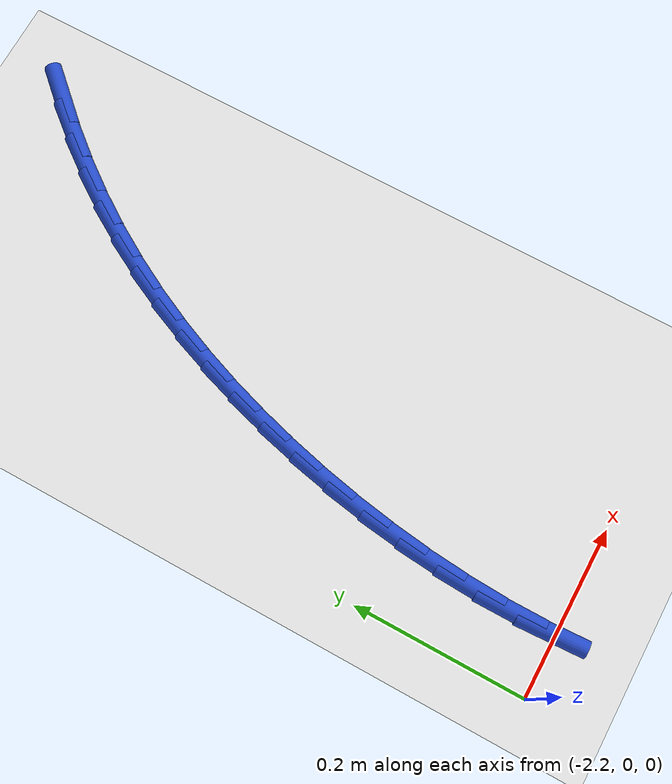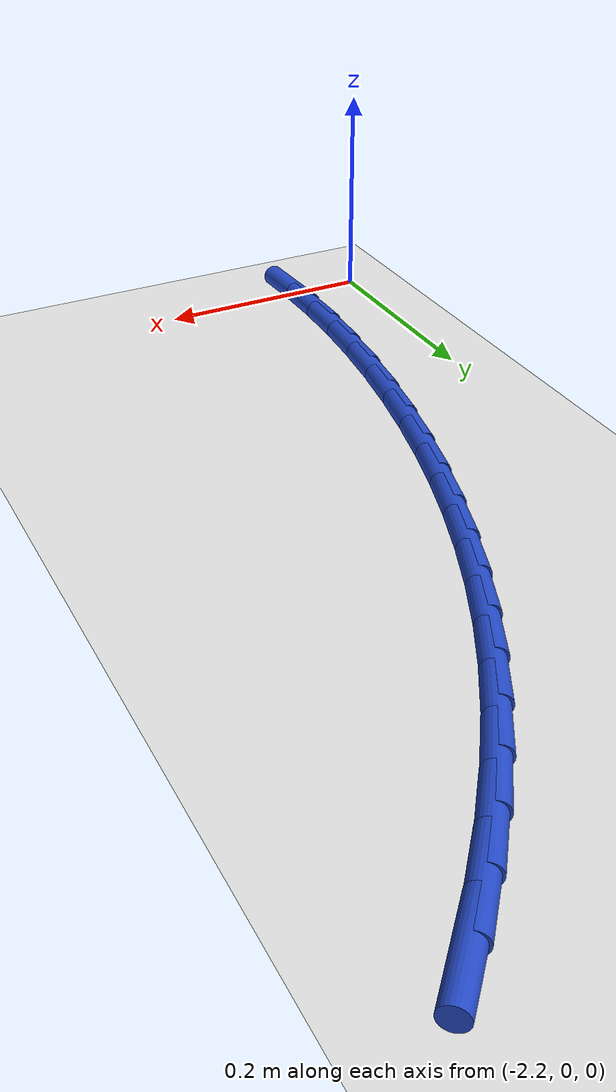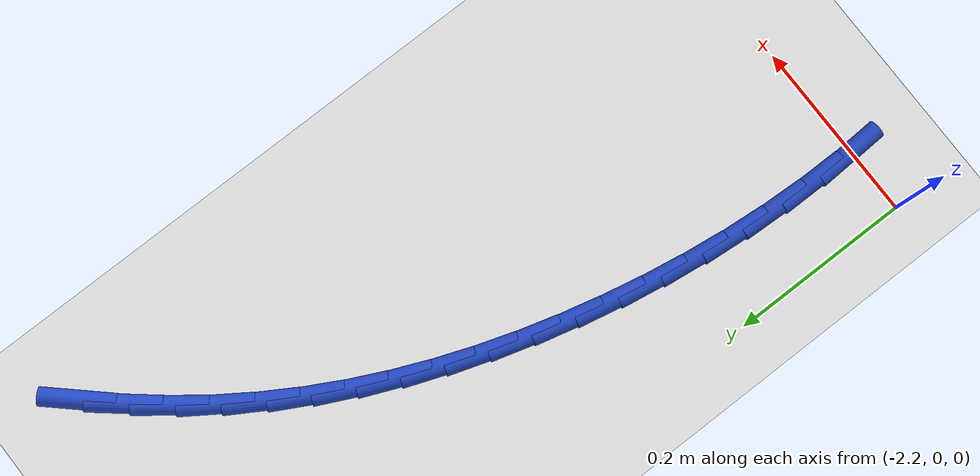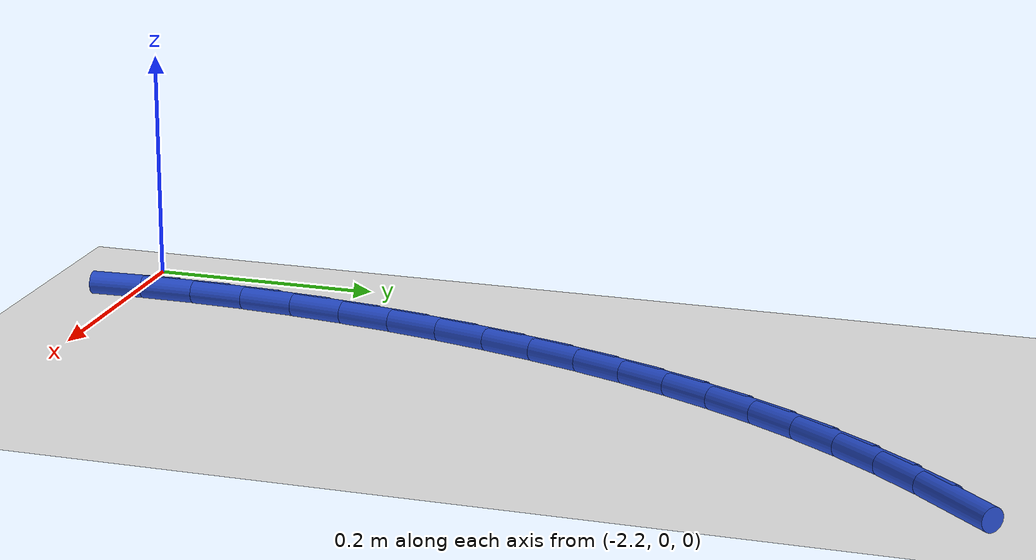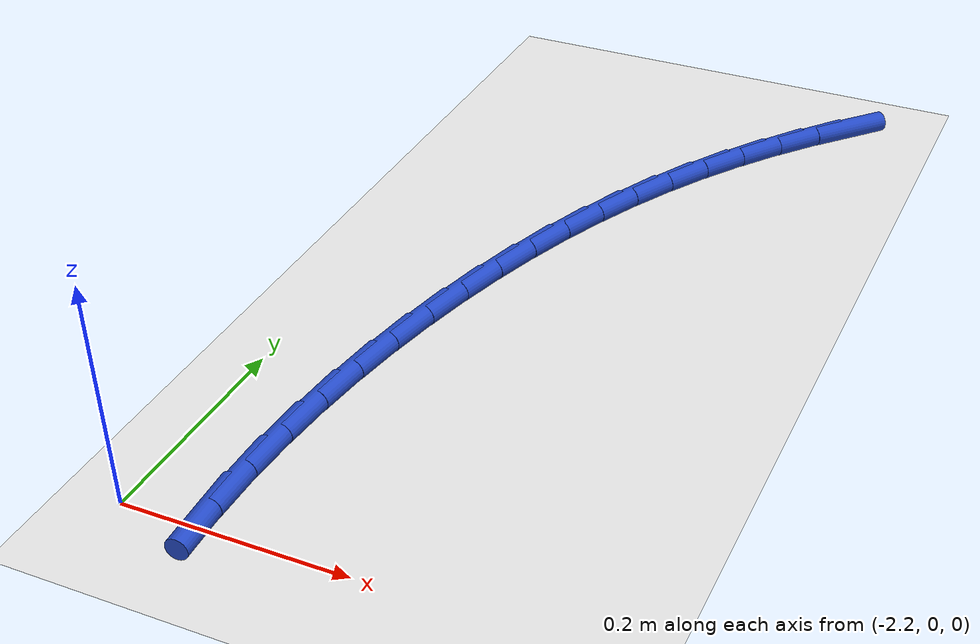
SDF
<sdf version="1.6">
 <world name="default">
  <model name="ground_plane">
   <static>1</static>
   <link name="link">
    <collision name="collision">
     <geometry><plane><normal>0 0 1</normal><size>100 100</size></plane></geometry>
     <surface><friction><ode><mu>100</mu><mu2>50</mu2></ode></friction></surface>
    </collision>
    <visual name="visual">
     <cast_shadows>0</cast_shadows>
     <geometry><plane><normal>0 0 1</normal><size>100 100</size></plane></geometry>
     <material>
      <script><uri>file://media/materials/scripts/gazebo.material</uri><name>Gazebo/WhiteGlow</name></script>
     </material>
    </visual>
   </link>
  </model>
  <model name="line">
   <link name="link_56">
    <pose>-1.846331514930791 0.7763787657173508 0.01 0 1.57 0.8256062091136608</pose>
    <collision name="collision">
     <geometry><cylinder><radius>0.01</radius><length>0.08</length></cylinder></geometry>
    </collision>
    <visual name="visual">
     <material>
      <script><name>Gazebo/Blue</name><uri>file://media/materials/scripts/gazebo.material</uri></script>
     </material>
     <geometry><cylinder><radius>0.01</radius><length>0.08</length></cylinder></geometry>
    </visual>
   </link>
   <link name="link_57">
    <pose>-1.8781145666881147 0.74193127736753 0.01 0 1.57 0.8771704968651995</pose>
    <collision name="collision">
     <geometry><cylinder><radius>0.01</radius><length>0.08</length></cylinder></geometry>
    </collision>
    <visual name="visual">
     <material>
      <script><name>Gazebo/Blue</name><uri>file://media/materials/scripts/gazebo.material</uri></script>
     </material>
     <geometry><cylinder><radius>0.01</radius><length>0.08</length></cylinder></geometry>
    </visual>
   </link>
   <link name="link_58">
    <pose>-1.9078586130925652 0.7061575774126857 0.01 0 1.57 0.9281133519541436</pose>
    <collision name="collision">
     <geometry><cylinder><radius>0.01</radius><length>0.08</length></cylinder></geometry>
    </collision>
    <visual name="visual">
     <material>
      <script><name>Gazebo/Blue</name><uri>file://media/materials/scripts/gazebo.material</uri></script>
     </material>
     <geometry><cylinder><radius>0.01</radius><length>0.08</length></cylinder></geometry>
    </visual>
   </link>
   <link name="link_59">
    <pose>-1.935438166939372 0.6693220933533235 0.01 0 1.57 0.9788016310542917</pose>
    <collision name="collision">
     <geometry><cylinder><radius>0.01</radius><length>0.08</length></cylinder></geometry>
    </collision>
    <visual name="visual">
     <material>
      <script><name>Gazebo/Blue</name><uri>file://media/materials/scripts/gazebo.material</uri></script>
     </material>
     <geometry><cylinder><radius>0.01</radius><length>0.08</length></cylinder></geometry>
    </visual>
   </link>
   <link name="link_60">
    <pose>-1.9608644741562067 0.6315105591285235 0.01 0 1.57 1.028873572069799</pose>
    <collision name="collision">
     <geometry><cylinder><radius>0.01</radius><length>0.08</length></cylinder></geometry>
    </collision>
    <visual name="visual">
     <material>
      <script><name>Gazebo/Blue</name><uri>file://media/materials/scripts/gazebo.material</uri></script>
     </material>
     <geometry><cylinder><radius>0.01</radius><length>0.08</length></cylinder></geometry>
    </visual>
   </link>
   <link name="link_61">
    <pose>-1.9842238201040465 0.5927106412715716 0.01 0 1.57 1.0778724670143625</pose>
    <collision name="collision">
     <geometry><cylinder><radius>0.01</radius><length>0.08</length></cylinder></geometry>
    </collision>
    <visual name="visual">
     <material>
      <script><name>Gazebo/Blue</name><uri>file://media/materials/scripts/gazebo.material</uri></script>
     </material>
     <geometry><cylinder><radius>0.01</radius><length>0.08</length></cylinder></geometry>
    </visual>
   </link>
   <link name="link_62">
    <pose>-2.0056032628900584 0.5529089964305387 0.01 0 1.57 1.1253777031563543</pose>
    <collision name="collision">
     <geometry><cylinder><radius>0.01</radius><length>0.08</length></cylinder></geometry>
    </collision>
    <visual name="visual">
     <material>
      <script><name>Gazebo/Blue</name><uri>file://media/materials/scripts/gazebo.material</uri></script>
     </material>
     <geometry><cylinder><radius>0.01</radius><length>0.08</length></cylinder></geometry>
    </visual>
   </link>
   <link name="link_63">
    <pose>-2.0250898606214083 0.5120922812534954 0.01 0 1.57 1.171019883879433</pose>
    <collision name="collision">
     <geometry><cylinder><radius>0.01</radius><length>0.08</length></cylinder></geometry>
    </collision>
    <visual name="visual">
     <material>
      <script><name>Gazebo/Blue</name><uri>file://media/materials/scripts/gazebo.material</uri></script>
     </material>
     <geometry><cylinder><radius>0.01</radius><length>0.08</length></cylinder></geometry>
    </visual>
   </link>
   <link name="link_64">
    <pose>-2.0427706714052647 0.47024715238851267 0.01 0 1.57 1.2144912479256051</pose>
    <collision name="collision">
     <geometry><cylinder><radius>0.01</radius><length>0.08</length></cylinder></geometry>
    </collision>
    <visual name="visual">
     <material>
      <script><name>Gazebo/Blue</name><uri>file://media/materials/scripts/gazebo.material</uri></script>
     </material>
     <geometry><cylinder><radius>0.01</radius><length>0.08</length></cylinder></geometry>
    </visual>
   </link>
   <link name="link_65">
    <pose>-2.058732753348795 0.4273602664836611 0.01 0 1.57 1.2555507181265897</pose>
    <collision name="collision">
     <geometry><cylinder><radius>0.01</radius><length>0.08</length></cylinder></geometry>
    </collision>
    <visual name="visual">
     <material>
      <script><name>Gazebo/Blue</name><uri>file://media/materials/scripts/gazebo.material</uri></script>
     </material>
     <geometry><cylinder><radius>0.01</radius><length>0.08</length></cylinder></geometry>
    </visual>
   </link>
   <link name="link_66">
    <pose>-2.0730631645591644 0.38341828018701124 0.01 0 1.57 1.2940280527197485</pose>
    <collision name="collision">
     <geometry><cylinder><radius>0.01</radius><length>0.08</length></cylinder></geometry>
    </collision>
    <visual name="visual">
     <material>
      <script><name>Gazebo/Blue</name><uri>file://media/materials/scripts/gazebo.material</uri></script>
     </material>
     <geometry><cylinder><radius>0.01</radius><length>0.08</length></cylinder></geometry>
    </visual>
   </link>
   <link name="link_67">
    <pose>-2.085848672174367 0.338408176515621 0.01 0 1.57 1.3306575052550618</pose>
    <collision name="collision">
     <geometry><cylinder><radius>0.01</radius><length>0.08</length></cylinder></geometry>
    </collision>
    <visual name="visual">
     <material>
      <script><name>Gazebo/Blue</name><uri>file://media/materials/scripts/gazebo.material</uri></script>
     </material>
     <geometry><cylinder><radius>0.01</radius><length>0.08</length></cylinder></geometry>
    </visual>
   </link>
   <link name="link_68">
    <pose>-2.0971191139227865 0.2923807940262099 0.01 0 1.57 1.3674630871520572</pose>
    <collision name="collision">
     <geometry><cylinder><radius>0.01</radius><length>0.08</length></cylinder></geometry>
    </collision>
    <visual name="visual">
     <material>
      <script><name>Gazebo/Blue</name><uri>file://media/materials/scripts/gazebo.material</uri></script>
     </material>
     <geometry><cylinder><radius>0.01</radius><length>0.08</length></cylinder></geometry>
    </visual>
   </link>
   <link name="link_69">
    <pose>-2.1067795703183667 0.2455269066675874 0.01 0 1.57 1.4050908066854757</pose>
    <collision name="collision">
     <geometry><cylinder><radius>0.01</radius><length>0.08</length></cylinder></geometry>
    </collision>
    <visual name="visual">
     <material>
      <script><name>Gazebo/Blue</name><uri>file://media/materials/scripts/gazebo.material</uri></script>
     </material>
     <geometry><cylinder><radius>0.01</radius><length>0.08</length></cylinder></geometry>
    </visual>
   </link>
   <link name="link_70">
    <pose>-2.1147185861732027 0.19805583585238865 0.01 0 1.57 1.4439485734308788</pose>
    <collision name="collision">
     <geometry><cylinder><radius>0.01</radius><length>0.08</length></cylinder></geometry>
    </collision>
    <visual name="visual">
     <material>
      <script><name>Gazebo/Blue</name><uri>file://media/materials/scripts/gazebo.material</uri></script>
     </material>
     <geometry><cylinder><radius>0.01</radius><length>0.08</length></cylinder></geometry>
    </visual>
   </link>
   <link name="link_71">
    <pose>-2.120824706299389 0.15017690299324865 0.01 0 1.57 1.484447767332072</pose>
    <collision name="collision">
     <geometry><cylinder><radius>0.01</radius><length>0.08</length></cylinder></geometry>
    </collision>
    <visual name="visual">
     <material>
      <script><name>Gazebo/Blue</name><uri>file://media/materials/scripts/gazebo.material</uri></script>
     </material>
     <geometry><cylinder><radius>0.01</radius><length>0.08</length></cylinder></geometry>
    </visual>
   </link>
   <link name="link_72">
    <pose>-2.1249864755090204 0.10209942950280348 0.01 0 1.57 1.5270109736996424</pose>
    <collision name="collision">
     <geometry><cylinder><radius>0.01</radius><length>0.08</length></cylinder></geometry>
    </collision>
    <visual name="visual">
     <material>
      <script><name>Gazebo/Blue</name><uri>file://media/materials/scripts/gazebo.material</uri></script>
     </material>
     <geometry><cylinder><radius>0.01</radius><length>0.08</length></cylinder></geometry>
    </visual>
   </link>
   <link name="link_73">
    <pose>-2.12709243861419 0.054032736793688085 0.01 0 1.57 -1.5695151873657478</pose>
    <collision name="collision">
     <geometry><cylinder><radius>0.01</radius><length>0.08</length></cylinder></geometry>
    </collision>
    <visual name="visual">
     <material>
      <script><name>Gazebo/Blue</name><uri>file://media/materials/scripts/gazebo.material</uri></script>
     </material>
     <geometry><cylinder><radius>0.01</radius><length>0.08</length></cylinder></geometry>
    </visual>
   </link>
   <link name="link_74">
    <pose>-2.127031140426994 0.006186146278537641 0.01 0 1.57 -1.5214868048233905</pose>
    <collision name="collision">
     <geometry><cylinder><radius>0.01</radius><length>0.08</length></cylinder></geometry>
    </collision>
    <visual name="visual">
     <material>
      <script><name>Gazebo/Blue</name><uri>file://media/materials/scripts/gazebo.material</uri></script>
     </material>
     <geometry><cylinder><radius>0.01</radius><length>0.08</length></cylinder></geometry>
    </visual>
   </link>
  </model>
 </world>
</sdf>
